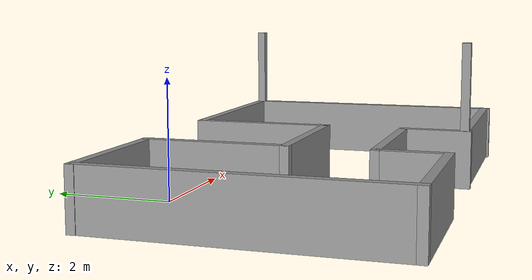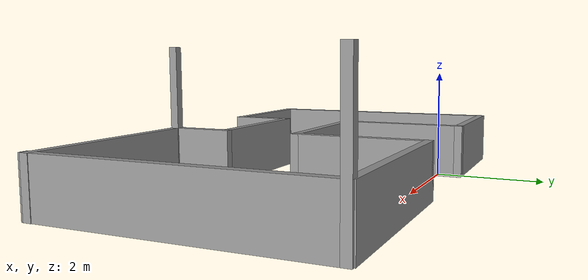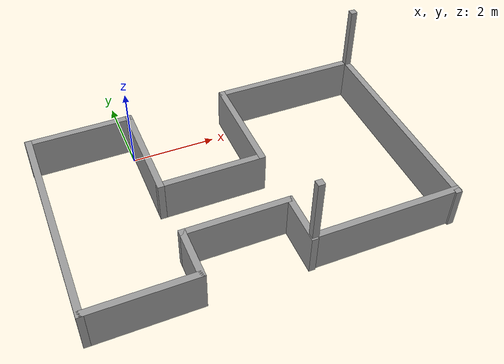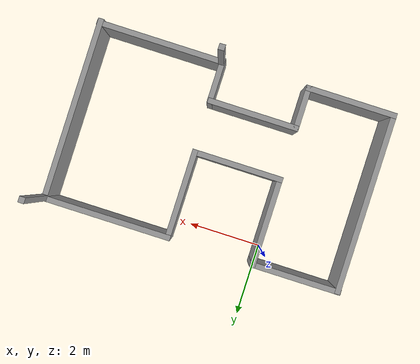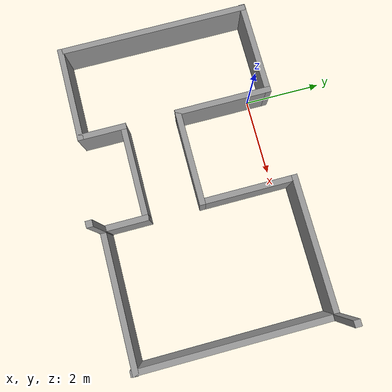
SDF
<?xml version='1.0'?>
<sdf version='1.6'>
  <model name='popcan_arena'>
    <pose frame=''>1.80492 -2.015 0 0 -0 0</pose>
    <link name='Wall_1'>
      <collision name='Wall_1_Collision'>
        <geometry>
          <box>
            <size>5 0.15 1</size>
          </box>
        </geometry>
        <pose frame=''>0 0 0.5 0 -0 0</pose>
      </collision>
      <visual name='Wall_1_Visual'>
        <pose frame=''>0 0 0.5 0 -0 0</pose>
        <geometry>
          <box>
            <size>5 0.15 1</size>
          </box>
        </geometry>
        <material>
          <script>
            <uri>file://media/materials/scripts/gazebo.material</uri>
            <name>Gazebo/Grey</name>
          </script>
          <ambient>1 1 1 1</ambient>
        </material>
      </visual>
      <pose frame=''>4.04509 -0.01 0 0 -0 1.5708</pose>
    </link>
    <link name='Wall_2'>
      <collision name='Wall_2_Collision'>
        <geometry>
          <box>
            <size>0.15 0.15 2.5</size>
          </box>
        </geometry>
        <pose frame=''>0 0 1.25 0 -0 0</pose>
      </collision>
      <visual name='Wall_2_Visual'>
        <pose frame=''>0 0 1.25 0 -0 0</pose>
        <geometry>
          <box>
            <size>0.15 0.15 2.5</size>
          </box>
        </geometry>
        <material>
          <script>
            <uri>file://media/materials/scripts/gazebo.material</uri>
            <name>Gazebo/Grey</name>
          </script>
          <ambient>1 1 1 1</ambient>
        </material>
      </visual>
      <pose frame=''>4.04509 2.415 0 0 -0 0</pose>
    </link>
    <link name='Wall_26'>
      <collision name='Wall_26_Collision'>
        <geometry>
          <box>
            <size>0.15 0.15 2.5</size>
          </box>
        </geometry>
        <pose frame=''>0 0 1.25 0 -0 0</pose>
      </collision>
      <visual name='Wall_26_Visual'>
        <pose frame=''>0 0 1.25 0 -0 0</pose>
        <geometry>
          <box>
            <size>0.15 0.15 2.5</size>
          </box>
        </geometry>
        <material>
          <script>
            <uri>file://media/materials/scripts/gazebo.material</uri>
            <name>Gazebo/Grey</name>
          </script>
          <ambient>1 1 1 1</ambient>
        </material>
      </visual>
      <pose frame=''>0.695085 -2.385 0 0 -0 0</pose>
    </link>
    <link name='Wall_28'>
      <collision name='Wall_28_Collision'>
        <geometry>
          <box>
            <size>2.5 0.15 1</size>
          </box>
        </geometry>
        <pose frame=''>0 0 0.5 0 -0 0</pose>
      </collision>
      <visual name='Wall_28_Visual'>
        <pose frame=''>0 0 0.5 0 -0 0</pose>
        <geometry>
          <box>
            <size>2.5 0.15 1</size>
          </box>
        </geometry>
        <material>
          <script>
            <uri>file://media/materials/scripts/gazebo.material</uri>
            <name>Gazebo/Grey</name>
          </script>
          <ambient>1 1 1 1</ambient>
        </material>
      </visual>
      <pose frame=''>-0.519915 -1.325 0 0 -0 3.14159</pose>
    </link>
    <link name='Wall_29'>
      <collision name='Wall_29_Collision'>
        <geometry>
          <box>
            <size>1.25 0.15 1</size>
          </box>
        </geometry>
        <pose frame=''>0 0 0.5 0 -0 0</pose>
      </collision>
      <visual name='Wall_29_Visual'>
        <pose frame=''>0 0 0.5 0 -0 0</pose>
        <geometry>
          <box>
            <size>1.25 0.15 1</size>
          </box>
        </geometry>
        <material>
          <script>
            <uri>file://media/materials/scripts/gazebo.material</uri>
            <name>Gazebo/Grey</name>
          </script>
          <ambient>1 1 1 1</ambient>
        </material>
      </visual>
      <pose frame=''>-1.69491 -1.875 0 0 0 -1.5708</pose>
    </link>
    <link name='Wall_30'>
      <collision name='Wall_30_Collision'>
        <geometry>
          <box>
            <size>2.5 0.15 1</size>
          </box>
        </geometry>
        <pose frame=''>0 0 0.5 0 -0 0</pose>
      </collision>
      <visual name='Wall_30_Visual'>
        <pose frame=''>0 0 0.5 0 -0 0</pose>
        <geometry>
          <box>
            <size>2.5 0.15 1</size>
          </box>
        </geometry>
        <material>
          <script>
            <uri>file://media/materials/scripts/gazebo.material</uri>
            <name>Gazebo/Grey</name>
          </script>
          <ambient>1 1 1 1</ambient>
        </material>
      </visual>
      <pose frame=''>-2.86992 -2.425 0 0 -0 3.14159</pose>
    </link>
    <link name='Wall_33'>
      <collision name='Wall_33_Collision'>
        <geometry>
          <box>
            <size>5 0.15 1</size>
          </box>
        </geometry>
        <pose frame=''>0 0 0.5 0 -0 0</pose>
      </collision>
      <visual name='Wall_33_Visual'>
        <pose frame=''>0 0 0.5 0 -0 0</pose>
        <geometry>
          <box>
            <size>5 0.15 1</size>
          </box>
        </geometry>
        <material>
          <script>
            <uri>file://media/materials/scripts/gazebo.material</uri>
            <name>Gazebo/Grey</name>
          </script>
          <ambient>1 1 1 1</ambient>
        </material>
      </visual>
      <pose frame=''>-4.04491 0 0 0 -0 1.5708</pose>
    </link>
    <link name='Wall_35'>
      <collision name='Wall_35_Collision'>
        <geometry>
          <box>
            <size>3.5 0.15 1</size>
          </box>
        </geometry>
        <pose frame=''>0 0 0.5 0 -0 0</pose>
      </collision>
      <visual name='Wall_35_Visual'>
        <pose frame=''>0 0 0.5 0 -0 0</pose>
        <geometry>
          <box>
            <size>3.5 0.15 1</size>
          </box>
        </geometry>
        <material>
          <script>
            <uri>file://media/materials/scripts/gazebo.material</uri>
            <name>Gazebo/Grey</name>
          </script>
          <ambient>1 1 1 1</ambient>
        </material>
      </visual>
      <pose frame=''>2.32009 2.435 0 0 -0 0</pose>
    </link>
    <link name='Wall_4'>
      <collision name='Wall_4_Collision'>
        <geometry>
          <box>
            <size>2.5 0.15 1</size>
          </box>
        </geometry>
        <pose frame=''>0 0 0.5 0 -0 0</pose>
      </collision>
      <visual name='Wall_4_Visual'>
        <pose frame=''>0 0 0.5 0 -0 0</pose>
        <geometry>
          <box>
            <size>2.5 0.15 1</size>
          </box>
        </geometry>
        <material>
          <script>
            <uri>file://media/materials/scripts/gazebo.material</uri>
            <name>Gazebo/Grey</name>
          </script>
          <ambient>1 1 1 1</ambient>
        </material>
      </visual>
      <pose frame=''>0.645085 1.26 0 0 0 -1.5708</pose>
    </link>
    <link name='Wall_41'>
      <collision name='Wall_41_Collision'>
        <geometry>
          <box>
            <size>1.25 0.15 1</size>
          </box>
        </geometry>
        <pose frame=''>0 0 0.5 0 -0 0</pose>
      </collision>
      <visual name='Wall_41_Visual'>
        <pose frame=''>0 0 0.5 0 -0 0</pose>
        <geometry>
          <box>
            <size>1.25 0.15 1</size>
          </box>
        </geometry>
        <material>
          <script>
            <uri>file://media/materials/scripts/gazebo.material</uri>
            <name>Gazebo/Grey</name>
          </script>
          <ambient>1 1 1 1</ambient>
        </material>
      </visual>
      <pose frame=''>0.675085 -1.875 0 0 0 -1.5708</pose>
    </link>
    <link name='Wall_43'>
      <collision name='Wall_43_Collision'>
        <geometry>
          <box>
            <size>3.5 0.15 1</size>
          </box>
        </geometry>
        <pose frame=''>0 0 0.5 0 -0 0</pose>
      </collision>
      <visual name='Wall_43_Visual'>
        <pose frame=''>0 0 0.5 0 -0 0</pose>
        <geometry>
          <box>
            <size>3.5 0.15 1</size>
          </box>
        </geometry>
        <material>
          <script>
            <uri>file://media/materials/scripts/gazebo.material</uri>
            <name>Gazebo/Grey</name>
          </script>
          <ambient>1 1 1 1</ambient>
        </material>
      </visual>
      <pose frame=''>2.38008 -2.395 0 0 -0 3.14159</pose>
    </link>
    <link name='Wall_5'>
      <collision name='Wall_5_Collision'>
        <geometry>
          <box>
            <size>2.5 0.15 1</size>
          </box>
        </geometry>
        <pose frame=''>0 0 0.5 0 -0 0</pose>
      </collision>
      <visual name='Wall_5_Visual'>
        <pose frame=''>0 0 0.5 0 -0 0</pose>
        <geometry>
          <box>
            <size>2.5 0.15 1</size>
          </box>
        </geometry>
        <material>
          <script>
            <uri>file://media/materials/scripts/gazebo.material</uri>
            <name>Gazebo/Grey</name>
          </script>
          <ambient>1 1 1 1</ambient>
        </material>
      </visual>
      <pose frame=''>-0.529915 0.085 0 0 -0 3.14159</pose>
    </link>
    <link name='Wall_6'>
      <collision name='Wall_6_Collision'>
        <geometry>
          <box>
            <size>2.5 0.15 1</size>
          </box>
        </geometry>
        <pose frame=''>0 0 0.5 0 -0 0</pose>
      </collision>
      <visual name='Wall_6_Visual'>
        <pose frame=''>0 0 0.5 0 -0 0</pose>
        <geometry>
          <box>
            <size>2.5 0.15 1</size>
          </box>
        </geometry>
        <material>
          <script>
            <uri>file://media/materials/scripts/gazebo.material</uri>
            <name>Gazebo/Grey</name>
          </script>
          <ambient>1 1 1 1</ambient>
        </material>
      </visual>
      <pose frame=''>-1.70491 1.26 0 0 -0 1.5708</pose>
    </link>
    <link name='Wall_7'>
      <collision name='Wall_7_Collision'>
        <geometry>
          <box>
            <size>2.50034 0.15 1</size>
          </box>
        </geometry>
        <pose frame=''>0 0 0.5 0 -0 0</pose>
      </collision>
      <visual name='Wall_7_Visual'>
        <pose frame=''>0 0 0.5 0 -0 0</pose>
        <geometry>
          <box>
            <size>2.50034 0.15 1</size>
          </box>
        </geometry>
        <material>
          <script>
            <uri>file://media/materials/scripts/gazebo.material</uri>
            <name>Gazebo/Grey</name>
          </script>
          <ambient>1 1 1 1</ambient>
        </material>
      </visual>
      <pose frame=''>-2.87992 2.435 0 0 -0 3.14159</pose>
    </link>
    <static>1</static>
  </model>
</sdf>
